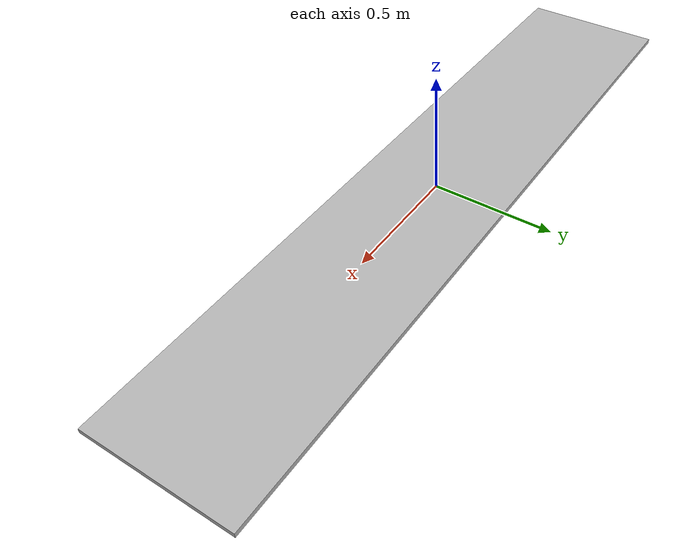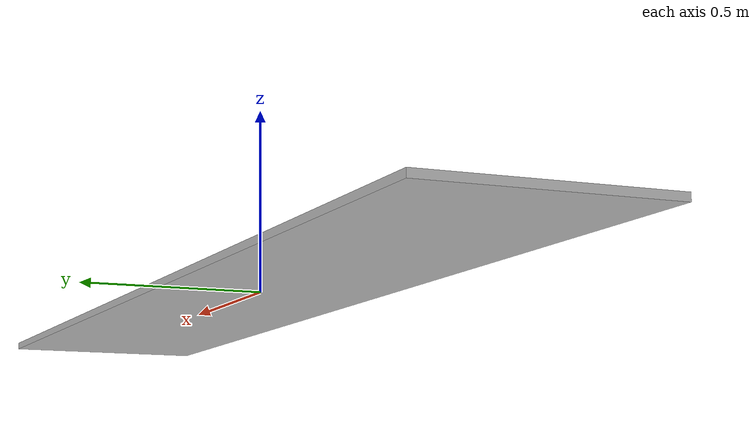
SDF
<?xml version='1.0'?>
<sdf version='1.6'>
  <model name='extra_heavy_duty_table_surface_only_collision'>
    <link name='link'>
      <pose frame=''>0 0 0 0 -0 0</pose>
      <visual name='visual1'>
        <pose frame=''>0 0 0 0 -0 0</pose>
        <geometry>
          <box>
            <size>3 0.6096 0.02</size>
          </box>
        </geometry>
      </visual>
     <collision name='surface'>
        <laser_retro>0</laser_retro>
        <max_contacts>10</max_contacts>
        <pose frame=''>0 0 0 0 -0 0</pose>
        <geometry>
          <box>
             <size>3 0.6096 0.02</size>
          </box>
        </geometry>
        <surface>
          <friction>
            <ode>
              <mu>1.5</mu>
              <mu2>1.5</mu2>
              <fdir1>0 1 0</fdir1>
              <slip1>1</slip1>
              <slip2>1</slip2>
            </ode>
            <torsional>
              <coefficient>1</coefficient>
              <patch_radius>0</patch_radius>
              <surface_radius>0</surface_radius>
              <use_patch_radius>1</use_patch_radius>
              <ode>
                <slip>0</slip>
              </ode>
            </torsional>
          </friction>
          <bounce>
            <restitution_coefficient>0</restitution_coefficient>
            <threshold>1e+06</threshold>
          </bounce>
          <contact>
            <collide_without_contact>0</collide_without_contact>
            <collide_without_contact_bitmask>1</collide_without_contact_bitmask>
            <collide_bitmask>1</collide_bitmask>
            <ode>
              <soft_cfm>0</soft_cfm>
              <soft_erp>0.2</soft_erp>
              <kp>1e+13</kp>
              <kd>1</kd>
              <max_vel>0.01</max_vel>
              <min_depth>0</min_depth>
            </ode>
            <bullet>
              <split_impulse>1</split_impulse>
              <split_impulse_penetration_threshold>-0.01</split_impulse_penetration_threshold>
              <soft_cfm>0</soft_cfm>
              <soft_erp>0.2</soft_erp>
              <kp>1e+13</kp>
              <kd>1</kd>
            </bullet>
          </contact>
        </surface>
      </collision>
    </link>

  </model>
</sdf>
